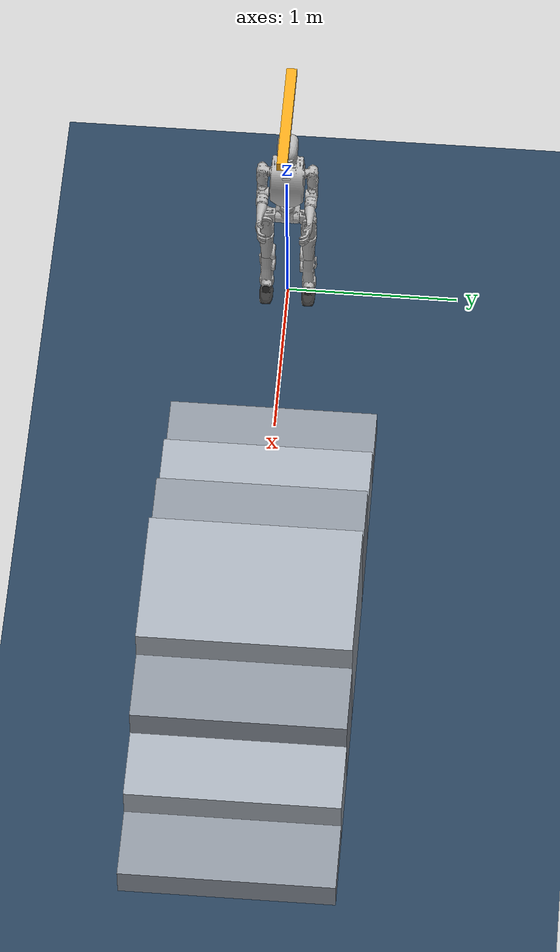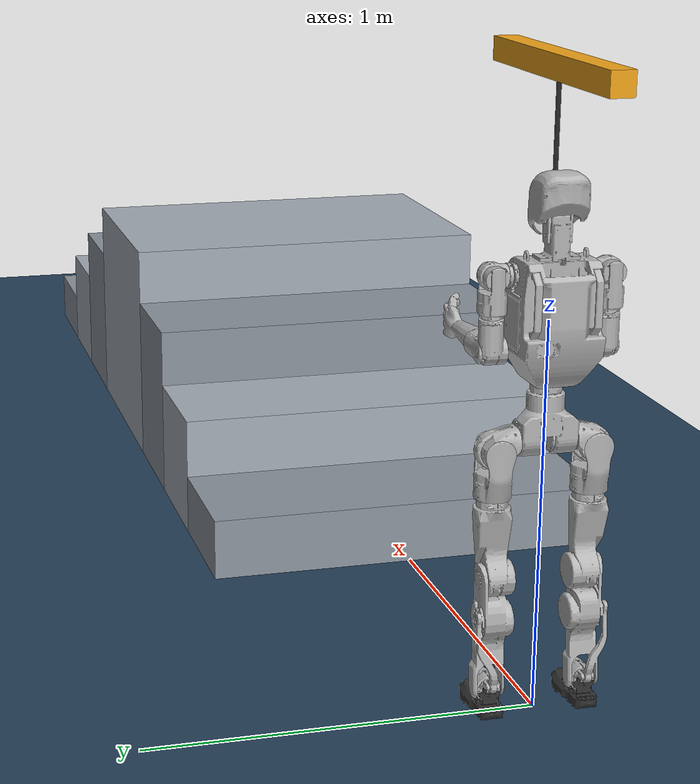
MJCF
<?xml version="1.0"?>
<mujoco model="AI Sapiens K1 gantry scene">
  <include file="k1.xml"/>

  <visual>
    <headlight diffuse="0.6 0.6 0.6" ambient="0.3 0.3 0.3" specular="0 0 0"/>
    <rgba haze="0.15 0.25 0.35 1"/>
    <global azimuth="-130" elevation="-20"/>
  </visual>

  <asset>
    <texture
      type="skybox"
      builtin="gradient"
      rgb1="0.3 0.5 0.7"
      rgb2="0 0 0"
      width="512"
      height="3072"/>
    <texture
      name="groundplane"
      type="2d"
      builtin="checker"
      rgb1="0.2 0.3 0.4"
      rgb2="0.1 0.2 0.3"
      mark="edge"
      markrgb="0.8 0.8 0.8"
      width="300"
      height="300"/>
    <material
      name="groundplane"
      texture="groundplane"
      texuniform="true"
      texrepeat="5 5"
      reflectance="0.2"/>
  </asset>

  <worldbody>
    <light pos="0 0 1.5" dir="0 0 -1" directional="true"/>
    <geom
      name="floor"
      type="plane"
      size="0 0 0.05"
      material="groundplane"/>
    <include file="stairs.xml"/>
    <body name="gantry" mocap="true" pos="0 0 1.60">
      <geom name="gantry_beam" type="box" size="0.35 0.03 0.03"
            contype="0" conaffinity="0" rgba="0.95 0.65 0.10 1"/>
      <geom name="gantry_cable" type="cylinder" size="0.006 0.28" pos="0 0 -0.31"
            contype="0" conaffinity="0" rgba="0.15 0.15 0.15 1"/>
    </body>
  </worldbody>

  <equality>
    <weld name="gantry_weld" body1="gantry" body2="torso_link"/>
  </equality>
</mujoco>

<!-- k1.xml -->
<mujoco model="k1">
  <compiler angle="radian" meshdir="../../meshes/k1_rev1" autolimits="true"/>
  <!-- Cyclo K1 Mimic: 4 physics steps per 0.02 s policy step. -->
  <option integrator="implicitfast" timestep="0.005" iterations="10" ls_iterations="20" ccd_iterations="50"/>
  <default>
    <joint damping="0" armature="0" frictionloss="0"/>
    <!-- Visual / Collision -->
    <default class="visual">
      <geom type="mesh" contype="0" conaffinity="0" group="2" density="0"/>
    </default>
    <default class="collision">
      <geom contype="1" conaffinity="1" condim="1" group="3" density="0" rgba="0.45 0.65 0.85 0.35"/>
      <!-- Match k1_rev1.py FULL_COLLISION; priority selects foot friction over the floor. -->
      <default class="foot_collision">
        <geom condim="3" priority="1" friction="0.6 0.005 0.0001"/>
      </default>
    </default>
    <!-- QC060-200-R020-RE motor: arms and ankle roll -->
    <default class="QC060-200-R020-RE">
      <joint armature="0.00564892"/>
      <motor ctrllimited="true" ctrlrange="-47.277 47.277" forcelimited="true" forcerange="-47.277 47.277"/>
    </default>
    <!-- QC080-240-R020-RE motor: hips, knees, ankle pitch, and waist yaw -->
    <default class="QC080-240-R020-RE">
      <joint armature="0.01936542"/>
      <motor ctrllimited="true" ctrlrange="-96.864 96.864" forcelimited="true" forcerange="-96.864 96.864"/>
    </default>
  </default>
  <asset>
    <material name="white" rgba="0.7 0.7 0.7 1"/>
    <material name="dark" rgba="0.2 0.2 0.2 1"/>
    <material name="blue" rgba="0 0 1 1"/>
    <mesh name="head_link" file="head_link.stl" scale="0.001 0.001 0.001"/>
    <mesh name="left_ankle_pitch_link" file="left_ankle_pitch_link.stl" scale="0.001 0.001 0.001"/>
    <mesh name="left_ankle_roll_link" file="left_ankle_roll_link.stl" scale="0.001 0.001 0.001"/>
    <mesh name="left_elbow_link" file="left_elbow_link.stl" scale="0.001 0.001 0.001"/>
    <mesh name="left_hip_pitch_link" file="left_hip_pitch_link.stl" scale="0.001 0.001 0.001"/>
    <mesh name="left_hip_roll_link" file="left_hip_roll_link.stl" scale="0.001 0.001 0.001"/>
    <mesh name="left_hip_yaw_link" file="left_hip_yaw_link.stl" scale="0.001 0.001 0.001"/>
    <mesh name="left_knee_link" file="left_knee_link.stl" scale="0.001 0.001 0.001"/>
    <mesh name="left_shoulder_pitch_link" file="left_shoulder_pitch_link.stl" scale="0.001 0.001 0.001"/>
    <mesh name="left_shoulder_roll_link" file="left_shoulder_roll_link.stl" scale="0.001 0.001 0.001"/>
    <mesh name="left_shoulder_yaw_link" file="left_shoulder_yaw_link.stl" scale="0.001 0.001 0.001"/>
    <mesh name="left_wrist_roll_rubber_hand" file="left_wrist_roll_rubber_hand.stl" scale="0.001 0.001 0.001"/>
    <mesh name="pelvis" file="pelvis.stl" scale="0.001 0.001 0.001"/>
    <mesh name="right_ankle_pitch_link" file="right_ankle_pitch_link.stl" scale="0.001 0.001 0.001"/>
    <mesh name="right_ankle_roll_link" file="right_ankle_roll_link.stl" scale="0.001 0.001 0.001"/>
    <mesh name="right_elbow_link" file="right_elbow_link.stl" scale="0.001 0.001 0.001"/>
    <mesh name="right_hip_pitch_link" file="right_hip_pitch_link.stl" scale="0.001 0.001 0.001"/>
    <mesh name="right_hip_roll_link" file="right_hip_roll_link.stl" scale="0.001 0.001 0.001"/>
    <mesh name="right_hip_yaw_link" file="right_hip_yaw_link.stl" scale="0.001 0.001 0.001"/>
    <mesh name="right_knee_link" file="right_knee_link.stl" scale="0.001 0.001 0.001"/>
    <mesh name="right_shoulder_pitch_link" file="right_shoulder_pitch_link.stl" scale="0.001 0.001 0.001"/>
    <mesh name="right_shoulder_roll_link" file="right_shoulder_roll_link.stl" scale="0.001 0.001 0.001"/>
    <mesh name="right_shoulder_yaw_link" file="right_shoulder_yaw_link.stl" scale="0.001 0.001 0.001"/>
    <mesh name="right_wrist_roll_rubber_hand" file="right_wrist_roll_rubber_hand.stl" scale="0.001 0.001 0.001"/>
    <mesh name="torso_link" file="torso_link.stl" scale="0.001 0.001 0.001"/>
  </asset>
  <worldbody>
    <body name="pelvis" pos="0 0 0.7955">
      <freejoint name="floating_base_joint"/>
      <inertial mass="3.612285000e+00"
        fullinertia="1.310875300e-02 9.176269400e-03 7.737728900e-03 -2.328763400e-07 5.514392300e-05 0.000000000e+00"
        pos="-2.925359500e-03 1.127629500e-06 -5.031528100e-02"/>
      <site name="imu" pos="0 0 0" quat="1 0 0 0" size="0.01" group="4"/>
      <geom class="visual" type="mesh" mesh="pelvis" material="white"/>
      <body name="left_hip_pitch_link" pos="0.0 0.040 -0.081">
        <inertial mass="1.145107600000e+00"
          fullinertia="1.421889812386e-03 1.033629795483e-03 1.088132517762e-03 2.042184810525e-05 -1.676488789760e-05 1.517172548758e-04"
          pos="-1.531630904980e-03 7.963346595672e-02 -2.592428596527e-02"/>
        <joint name="left_hip_pitch_joint" class="QC080-240-R020-RE" type="hinge" axis="0 1 0" range="-2.4435 2.4435" limited="true"
          actuatorfrclimited="true" actuatorfrcrange="-96.864 96.864"/>
        <geom class="visual" type="mesh" mesh="left_hip_pitch_link" material="white"/>
        <geom class="collision" pos="0 0.05 -0.02" euler="1.5708 0 0" type="cylinder" size="0.04 0.035"
          name="left_hip_pitch_link_collision_0"/>
        <body name="left_hip_roll_link" pos="-0.008 0.085 -0.030">
          <inertial mass="1.553528600000e+00"
            fullinertia="2.895593913609e-03 3.373453150000e-03 1.930057813609e-03 0.000000000000e+00 -7.419460800000e-05 -2.389544800000e-07"
            pos="1.451723700000e-02 0.000000000000e+00 -7.908224400000e-02"/>
          <joint name="left_hip_roll_joint" class="QC080-240-R020-RE" type="hinge" axis="1 0 0" range="-0.6109 2.5307"
            limited="true" actuatorfrclimited="true" actuatorfrcrange="-96.864 96.864"/>
          <geom class="visual" type="mesh" mesh="left_hip_roll_link" material="white"/>
          <body name="left_hip_yaw_link" pos="0.015 0.0 -0.0905">
            <inertial mass="1.835774100000e+00"
              fullinertia="1.056957363374e-02 1.098149862574e-02 1.600639866804e-03 -5.176745338720e-05 -4.528312668963e-04 -5.657788862029e-04"
              pos="-2.271799169407e-03 -5.348690484479e-03 -1.837910791103e-01"/>
            <joint name="left_hip_yaw_joint" class="QC080-240-R020-RE" type="hinge" axis="0 0 1" range="-3.1416 3.1416"
              limited="true" actuatorfrclimited="true" actuatorfrcrange="-96.864 96.864"/>
            <geom class="visual" type="mesh" mesh="left_hip_yaw_link" material="white"/>
            <geom class="collision" pos="0.0 0 -0.08" type="cylinder" size="0.045 0.065"
              name="left_hip_yaw_link_collision_0"/>
            <body name="left_knee_link" pos="-0.007 0.0 -0.2365">
              <inertial mass="2.527145400000e+00"
                fullinertia="1.262780659654e-02 1.311422450046e-02 2.980295546432e-03 1.945190841167e-04 -7.980998797765e-04 -3.173312502248e-04"
                pos="-2.270241351379e-03 4.250424132236e-03 -1.299305649983e-01"/>
              <joint name="left_knee_joint" class="QC080-240-R020-RE" type="hinge" axis="0 1 0" range="0 2.3562" limited="true"
                actuatorfrclimited="true" actuatorfrcrange="-96.864 96.864"/>
              <geom class="visual" type="mesh" mesh="left_knee_link" material="white"/>
              <geom class="collision" pos="0.0 0 -0.10" type="cylinder" size="0.04 0.09"
                name="left_knee_link_collision_0"/>
              <body name="left_ankle_pitch_link" pos="0.0 0.0 -0.294">
                <inertial mass="6.809980800000e-01"
                  fullinertia="3.739276718594e-04 4.252725400000e-04 4.458709718594e-04 0.000000000000e+00 4.977216400000e-05 0.000000000000e+00"
                  pos="4.741514100000e-03 0.000000000000e+00 2.430240700000e-03"/>
                <joint name="left_ankle_pitch_joint" class="QC080-240-R020-RE" type="hinge" axis="0 1 0" range="-0.7854 0.7854"
                  limited="true" actuatorfrclimited="true" actuatorfrcrange="-96.864 96.864"/>
                <geom class="visual" type="mesh" mesh="left_ankle_pitch_link" material="white"/>
                <body name="left_ankle_roll_link" pos="0 0 0.0">
                  <inertial mass="6.144995200000e-01"
                    fullinertia="4.106078400928e-04 1.507082100000e-03 1.591643400093e-03 0.000000000000e+00 4.426833600000e-05 0.000000000000e+00"
                    pos="3.360468400000e-02 0.000000000000e+00 -4.106129100000e-02"/>
                  <joint name="left_ankle_roll_joint" class="QC060-200-R020-RE" type="hinge" axis="1 0 0" range="-0.5236 0.5236"
                    limited="true" actuatorfrclimited="true" actuatorfrcrange="-47.277 47.277"/>
                  <geom class="visual" type="mesh" mesh="left_ankle_roll_link" material="dark"/>
                  <geom class="foot_collision" pos="-0.047 0.025 -0.06" type="sphere" size="0.005"
                    name="left_ankle_roll_link_collision_0"/>
                  <geom class="foot_collision" pos="-0.047 -0.025 -0.06" type="sphere" size="0.005"
                    name="left_ankle_roll_link_collision_1"/>
                  <geom class="foot_collision" pos="0.05 0.038 -0.06" type="sphere" size="0.005"
                    name="left_ankle_roll_link_collision_2"/>
                  <geom class="foot_collision" pos="0.05 -0.038 -0.06" type="sphere" size="0.005"
                    name="left_ankle_roll_link_collision_3"/>
                  <geom class="foot_collision" pos="0.112 0.027 -0.06" type="sphere" size="0.005"
                    name="left_ankle_roll_link_collision_4"/>
                  <geom class="foot_collision" pos="0.122 0.015 -0.05" type="sphere" size="0.005"
                    name="left_ankle_roll_link_collision_5"/>
                  <geom class="foot_collision" pos="0.125 0 -0.047" type="sphere" size="0.005"
                    name="left_ankle_roll_link_collision_6"/>
                  <geom class="foot_collision" pos="0.122 -0.015 -0.05" type="sphere" size="0.005"
                    name="left_ankle_roll_link_collision_7"/>
                  <geom class="foot_collision" pos="0.112 -0.027 -0.06" type="sphere" size="0.005"
                    name="left_ankle_roll_link_collision_8"/>
                </body>
              </body>
            </body>
          </body>
        </body>
      </body>
      <body name="right_hip_pitch_link" pos="0.0 -0.040 -0.081">
        <inertial mass="1.145107600000e+00"
          fullinertia="1.421889812386e-03 1.033629795483e-03 1.088132517762e-03 -2.042184810525e-05 -1.676488789760e-05 -1.517172548758e-04"
          pos="-1.531630904980e-03 -7.963346595672e-02 -2.592428596527e-02"/>
        <joint name="right_hip_pitch_joint" class="QC080-240-R020-RE" type="hinge" axis="0 1 0" range="-2.4435 2.4435"
          limited="true" actuatorfrclimited="true" actuatorfrcrange="-96.864 96.864"/>
        <geom class="visual" type="mesh" mesh="right_hip_pitch_link" material="white"/>
        <geom class="collision" pos="0 -0.05 -0.02" euler="1.5708 0 0" type="cylinder" size="0.04 0.035"
          name="right_hip_pitch_link_collision_0"/>
        <body name="right_hip_roll_link" pos="-0.008 -0.085 -0.030">
          <inertial mass="1.553528600000e+00"
            fullinertia="2.895593913609e-03 3.373453150000e-03 1.930057813609e-03 0.000000000000e+00 -7.419460800000e-05 2.389544800000e-07"
            pos="1.451723700000e-02 0.000000000000e+00 -7.908224400000e-02"/>
          <joint name="right_hip_roll_joint" class="QC080-240-R020-RE" type="hinge" axis="1 0 0" range="-2.5307 0.6109"
            limited="true" actuatorfrclimited="true" actuatorfrcrange="-96.864 96.864"/>
          <geom class="visual" type="mesh" mesh="right_hip_roll_link" material="white"/>
          <body name="right_hip_yaw_link" pos="0.015 0.0 -0.0905">
            <inertial mass="1.835774100000e+00"
              fullinertia="1.056957363374e-02 1.098149862574e-02 1.600639866804e-03 5.176745338720e-05 -4.528312668963e-04 5.657788862029e-04"
              pos="-2.271799169407e-03 5.348690484479e-03 -1.837910791103e-01"/>
            <joint name="right_hip_yaw_joint" class="QC080-240-R020-RE" type="hinge" axis="0 0 1" range="-3.1416 3.1416"
              limited="true" actuatorfrclimited="true" actuatorfrcrange="-96.864 96.864"/>
            <geom class="visual" type="mesh" mesh="right_hip_yaw_link" material="white"/>
            <geom class="collision" pos="0.0 0 -0.08" type="cylinder" size="0.045 0.065"
              name="right_hip_yaw_link_collision_0"/>
            <body name="right_knee_link" pos="-0.007 0.0 -0.2365">
              <inertial mass="2.527145400000e+00"
                fullinertia="1.262780659654e-02 1.311422450046e-02 2.980295546432e-03 -1.945190841167e-04 -7.980998797765e-04 3.173312502248e-04"
                pos="-2.270241351379e-03 -4.250424132236e-03 -1.299305649983e-01"/>
              <joint name="right_knee_joint" class="QC080-240-R020-RE" type="hinge" axis="0 1 0" range="0 2.3562" limited="true"
                actuatorfrclimited="true" actuatorfrcrange="-96.864 96.864"/>
              <geom class="visual" type="mesh" mesh="right_knee_link" material="white"/>
              <geom class="collision" pos="0.0 0 -0.10" type="cylinder" size="0.04 0.09"
                name="right_knee_link_collision_0"/>
              <body name="right_ankle_pitch_link" pos="0.0 0.0 -0.294">
                <inertial mass="6.809980800000e-01"
                  fullinertia="3.739276718594e-04 4.252725400000e-04 4.458709718594e-04 0.000000000000e+00 4.977216400000e-05 0.000000000000e+00"
                  pos="4.741514100000e-03 0.000000000000e+00 2.430240700000e-03"/>
                <joint name="right_ankle_pitch_joint" class="QC080-240-R020-RE" type="hinge" axis="0 1 0" range="-0.7854 0.7854"
                  limited="true" actuatorfrclimited="true" actuatorfrcrange="-96.864 96.864"/>
                <geom class="visual" type="mesh" mesh="right_ankle_pitch_link" material="white"/>
                <body name="right_ankle_roll_link" pos="0 0 0.0">
                  <inertial mass="6.144995200000e-01"
                    fullinertia="4.106078400928e-04 1.507082100000e-03 1.591643400093e-03 0.000000000000e+00 4.426833600000e-05 0.000000000000e+00"
                    pos="3.360468400000e-02 0.000000000000e+00 -4.106129100000e-02"/>
                  <joint name="right_ankle_roll_joint" class="QC060-200-R020-RE" type="hinge" axis="1 0 0" range="-0.5236 0.5236"
                    limited="true" actuatorfrclimited="true" actuatorfrcrange="-47.277 47.277"/>
                  <geom class="visual" type="mesh" mesh="right_ankle_roll_link" material="dark"/>
                  <geom class="foot_collision" pos="-0.047 0.025 -0.06" type="sphere" size="0.005"
                    name="right_ankle_roll_link_collision_0"/>
                  <geom class="foot_collision" pos="-0.047 -0.025 -0.06" type="sphere" size="0.005"
                    name="right_ankle_roll_link_collision_1"/>
                  <geom class="foot_collision" pos="0.05 0.038 -0.06" type="sphere" size="0.005"
                    name="right_ankle_roll_link_collision_2"/>
                  <geom class="foot_collision" pos="0.05 -0.038 -0.06" type="sphere" size="0.005"
                    name="right_ankle_roll_link_collision_3"/>
                  <geom class="foot_collision" pos="0.112 0.027 -0.06" type="sphere" size="0.005"
                    name="right_ankle_roll_link_collision_4"/>
                  <geom class="foot_collision" pos="0.122 0.015 -0.05" type="sphere" size="0.005"
                    name="right_ankle_roll_link_collision_5"/>
                  <geom class="foot_collision" pos="0.125 0 -0.047" type="sphere" size="0.005"
                    name="right_ankle_roll_link_collision_6"/>
                  <geom class="foot_collision" pos="0.122 -0.015 -0.05" type="sphere" size="0.005"
                    name="right_ankle_roll_link_collision_7"/>
                  <geom class="foot_collision" pos="0.112 -0.027 -0.06" type="sphere" size="0.005"
                    name="right_ankle_roll_link_collision_8"/>
                </body>
              </body>
            </body>
          </body>
        </body>
      </body>
      <body name="torso_link">
        <inertial mass="8.485159800e+00"
          fullinertia="8.705508700e-02 7.305000800e-02 4.271812600e-02 1.583453100e-04 5.178762500e-03 5.325749700e-04"
          pos="-9.348939900e-03 5.521418600e-04 2.188060700e-01"/>
        <joint name="waist_yaw_joint" class="QC080-240-R020-RE" type="hinge" axis="0 0 1" range="-6.2832 6.2832" limited="true"
          actuatorfrclimited="true" actuatorfrcrange="-96.864 96.864"/>
        <geom class="visual" type="mesh" mesh="torso_link" material="white"/>
        <geom class="collision" pos="-0.02 0 0.24" type="box" size="0.1 0.085 0.085" name="torso_link_collision_0"/>
        <body name="head_link" pos="-0.02725 0 0.361">
          <inertial mass="6.792353500e-01"
            fullinertia="2.471933800e-03 2.738339300e-03 1.531146400e-03 -8.394472500e-08 2.835210500e-05 -9.341772900e-08"
            pos="7.905180800e-03 7.391136900e-06 1.108984300e-01"/>
          <geom class="visual" type="mesh" mesh="head_link" material="white"/>
          <geom class="collision" type="mesh" mesh="head_link" name="head_link_collision_0"/>
        </body>
        <body name="left_shoulder_pitch_link" pos="0.0015 0.069 0.319">
          <inertial mass="6.074257400000e-01"
            fullinertia="3.529002080847e-04 3.006119076318e-04 3.483892704529e-04 6.220661200000e-06 -6.500570000000e-08 -8.238998319126e-09"
            pos="-2.860536300000e-03 7.356393650000e-02 3.947481570000e-06"/>
          <joint name="left_shoulder_pitch_joint" class="QC060-200-R020-RE" type="hinge" axis="0 1 0" range="-3.1416 3.1416"
            limited="true" actuatorfrclimited="true" actuatorfrcrange="-47.277 47.277"/>
          <geom class="visual" type="mesh" mesh="left_shoulder_pitch_link" material="white"/>
          <geom class="collision" pos="0 0.075 0.0" euler="0 1.5707963267948966 0" type="cylinder" size="0.032 0.025"
            name="left_shoulder_pitch_link_collision_0"/>
          <body name="left_shoulder_roll_link" pos="-0.005 0.077 0.0">
            <inertial mass="7.676193300000e-01"
              fullinertia="7.540640315074e-04 9.381096300000e-04 5.306054865074e-04 -3.848386467835e-14 -3.800846300000e-05 5.500000000099e-15"
              pos="-8.598869950000e-04 0.000000000000e+00 -6.266809700000e-02"/>
            <joint name="left_shoulder_roll_joint" class="QC060-200-R020-RE" type="hinge" axis="1 0 0" range="0 3.1416"
              limited="true" actuatorfrclimited="true" actuatorfrcrange="-47.277 47.277"/>
            <geom class="visual" type="mesh" mesh="left_shoulder_roll_link" material="white"/>
            <geom class="collision" pos="0.0 0.000 -0.13" type="cylinder" size="0.035 0.04"
              name="left_shoulder_roll_link_collision_0"/>
            <body name="left_shoulder_yaw_link" pos="0.0 0.0 -0.0687">
              <inertial mass="6.946265100000e-01"
                fullinertia="7.202233300000e-04 7.634050600000e-04 3.599643200000e-04 1.411072400000e-05 1.081796000000e-04 -3.396234100000e-05"
                pos="1.240965200000e-02 -4.015957800000e-03 -1.037212200000e-01"/>
              <joint name="left_shoulder_yaw_joint" class="QC060-200-R020-RE" type="hinge" axis="0 0 1" range="-3.1416 3.1416"
                limited="true" actuatorfrclimited="true" actuatorfrcrange="-47.277 47.277"/>
              <geom class="visual" type="mesh" mesh="left_shoulder_yaw_link" material="white"/>
              <body name="left_elbow_link" pos="0.016 -0.007 -0.1153">
                <inertial mass="6.689549900000e-01"
                  fullinertia="3.736555131490e-04 5.869930881490e-04 6.490868800000e-04 1.216866050000e-04 0.000000000000e+00 -3.369916297683e-12"
                  pos="6.552039900000e-02 4.121843650000e-03 0.000000000000e+00"/>
                <joint name="left_elbow_joint" class="QC060-200-R020-RE" type="hinge" axis="0 1 0" range="-0.7854 2.1817"
                  limited="true" actuatorfrclimited="true" actuatorfrcrange="-47.277 47.277"/>
                <geom class="visual" type="mesh" mesh="left_elbow_link" material="white"/>
                <body name="left_wrist_roll_rubber_hand" pos="0.0687 0.0 0.0">
                  <inertial mass="3.690000000000e-01"
                    fullinertia="2.034216700000e-04 2.413813900000e-03 2.355377400000e-03 1.009162200000e-04 4.214169350000e-05 -3.970702750000e-06"
                    pos="1.407654250000e-01 5.248606200000e-04 4.039338650000e-04"/>
                  <joint name="left_wrist_roll_joint" class="QC060-200-R020-RE" type="hinge" axis="1 0 0" range="-3.1416 3.1416"
                    limited="true" actuatorfrclimited="true" actuatorfrcrange="-47.277 47.277"/>
                  <geom class="visual" type="mesh" mesh="left_wrist_roll_rubber_hand" material="white"/>
                  <geom class="collision" type="mesh" mesh="left_wrist_roll_rubber_hand"
                    name="left_wrist_roll_rubber_hand_collision_0"/>
                </body>
              </body>
            </body>
          </body>
        </body>
        <body name="right_shoulder_pitch_link" pos="0.0015 -0.069 0.319">
          <inertial mass="6.074257400000e-01"
            fullinertia="3.529002080847e-04 3.006119076318e-04 3.483892704529e-04 -6.220661200000e-06 -6.500570000000e-08 8.238998319126e-09"
            pos="-2.860536300000e-03 -7.356393650000e-02 3.947481570000e-06"/>
          <joint name="right_shoulder_pitch_joint" class="QC060-200-R020-RE" type="hinge" axis="0 1 0" range="-3.1416 3.1416"
            limited="true" actuatorfrclimited="true" actuatorfrcrange="-47.277 47.277"/>
          <geom class="visual" type="mesh" mesh="right_shoulder_pitch_link" material="white"/>
          <geom class="collision" pos="0 -0.075 0.0" euler="0 1.5707963267948966 0" type="cylinder" size="0.032 0.025"
            name="right_shoulder_pitch_link_collision_0"/>
          <body name="right_shoulder_roll_link" pos="-0.005 -0.077 0.0">
            <inertial mass="7.676193300000e-01"
              fullinertia="7.540640315074e-04 9.381096300000e-04 5.306054865074e-04 3.848386467835e-14 -3.800846300000e-05 -5.500000000099e-15"
              pos="-8.598869950000e-04 0.000000000000e+00 -6.266809700000e-02"/>
            <joint name="right_shoulder_roll_joint" class="QC060-200-R020-RE" type="hinge" axis="1 0 0" range="-3.1416 0"
              limited="true" actuatorfrclimited="true" actuatorfrcrange="-47.277 47.277"/>
            <geom class="visual" type="mesh" mesh="right_shoulder_roll_link" material="white"/>
            <geom class="collision" pos="0.0 0.000 -0.13" type="cylinder" size="0.035 0.04"
              name="right_shoulder_roll_link_collision_0"/>
            <body name="right_shoulder_yaw_link" pos="0.0 0.0 -0.0687">
              <inertial mass="6.946265100000e-01"
                fullinertia="7.202233300000e-04 7.634050600000e-04 3.599643200000e-04 -1.411072400000e-05 1.081796000000e-04 3.396234100000e-05"
                pos="1.240965200000e-02 4.015957800000e-03 -1.037212200000e-01"/>
              <joint name="right_shoulder_yaw_joint" class="QC060-200-R020-RE" type="hinge" axis="0 0 1" range="-3.1416 3.1416"
                limited="true" actuatorfrclimited="true" actuatorfrcrange="-47.277 47.277"/>
              <geom class="visual" type="mesh" mesh="right_shoulder_yaw_link" material="white"/>
              <body name="right_elbow_link" pos="0.016 0.007 -0.1153">
                <inertial mass="6.689549900000e-01"
                  fullinertia="3.736555131490e-04 5.869930881490e-04 6.490868800000e-04 -1.216866050000e-04 0.000000000000e+00 3.369916297683e-12"
                  pos="6.552039900000e-02 -4.121843650000e-03 0.000000000000e+00"/>
                <joint name="right_elbow_joint" class="QC060-200-R020-RE" type="hinge" axis="0 1 0" range="-0.7854 2.1817"
                  limited="true" actuatorfrclimited="true" actuatorfrcrange="-47.277 47.277"/>
                <geom class="visual" type="mesh" mesh="right_elbow_link" material="white"/>
                <body name="right_wrist_roll_rubber_hand" pos="0.0687 0.0 0.0">
                  <inertial mass="3.690000000000e-01"
                    fullinertia="2.034216700000e-04 2.413813900000e-03 2.355377400000e-03 -1.009162200000e-04 4.214169350000e-05 3.970702750000e-06"
                    pos="1.407654250000e-01 -5.248606200000e-04 4.039338650000e-04"/>
                  <joint name="right_wrist_roll_joint" class="QC060-200-R020-RE" type="hinge" axis="1 0 0" range="-3.1416 3.1416"
                    limited="true" actuatorfrclimited="true" actuatorfrcrange="-47.277 47.277"/>
                  <geom class="visual" type="mesh" mesh="right_wrist_roll_rubber_hand" material="white"/>
                  <geom class="collision" type="mesh" mesh="right_wrist_roll_rubber_hand"
                    name="right_wrist_roll_rubber_hand_collision_0"/>
                </body>
              </body>
            </body>
          </body>
        </body>
      </body>
    </body>
  </worldbody>
  <actuator>
    <!-- Left leg -->
    <motor name="left_hip_pitch_joint_motor" joint="left_hip_pitch_joint" class="QC080-240-R020-RE"/>
    <motor name="left_hip_roll_joint_motor" joint="left_hip_roll_joint" class="QC080-240-R020-RE"/>
    <motor name="left_hip_yaw_joint_motor" joint="left_hip_yaw_joint" class="QC080-240-R020-RE"/>
    <motor name="left_knee_joint_motor" joint="left_knee_joint" class="QC080-240-R020-RE"/>
    <motor name="left_ankle_pitch_joint_motor" joint="left_ankle_pitch_joint" class="QC080-240-R020-RE"/>
    <motor name="left_ankle_roll_joint_motor" joint="left_ankle_roll_joint" class="QC060-200-R020-RE"/>
    <!-- Right leg -->
    <motor name="right_hip_pitch_joint_motor" joint="right_hip_pitch_joint" class="QC080-240-R020-RE"/>
    <motor name="right_hip_roll_joint_motor" joint="right_hip_roll_joint" class="QC080-240-R020-RE"/>
    <motor name="right_hip_yaw_joint_motor" joint="right_hip_yaw_joint" class="QC080-240-R020-RE"/>
    <motor name="right_knee_joint_motor" joint="right_knee_joint" class="QC080-240-R020-RE"/>
    <motor name="right_ankle_pitch_joint_motor" joint="right_ankle_pitch_joint" class="QC080-240-R020-RE"/>
    <motor name="right_ankle_roll_joint_motor" joint="right_ankle_roll_joint" class="QC060-200-R020-RE"/>
    <!-- Waist -->
    <motor name="waist_yaw_joint_motor" joint="waist_yaw_joint" class="QC080-240-R020-RE"/>
    <!-- Left arm -->
    <motor name="left_shoulder_pitch_joint_motor" joint="left_shoulder_pitch_joint" class="QC060-200-R020-RE"/>
    <motor name="left_shoulder_roll_joint_motor" joint="left_shoulder_roll_joint" class="QC060-200-R020-RE"/>
    <motor name="left_shoulder_yaw_joint_motor" joint="left_shoulder_yaw_joint" class="QC060-200-R020-RE"/>
    <motor name="left_elbow_joint_motor" joint="left_elbow_joint" class="QC060-200-R020-RE"/>
    <motor name="left_wrist_roll_joint_motor" joint="left_wrist_roll_joint" class="QC060-200-R020-RE"/>
    <!-- Right arm -->
    <motor name="right_shoulder_pitch_joint_motor" joint="right_shoulder_pitch_joint" class="QC060-200-R020-RE"/>
    <motor name="right_shoulder_roll_joint_motor" joint="right_shoulder_roll_joint" class="QC060-200-R020-RE"/>
    <motor name="right_shoulder_yaw_joint_motor" joint="right_shoulder_yaw_joint" class="QC060-200-R020-RE"/>
    <motor name="right_elbow_joint_motor" joint="right_elbow_joint" class="QC060-200-R020-RE"/>
    <motor name="right_wrist_roll_joint_motor" joint="right_wrist_roll_joint" class="QC060-200-R020-RE"/>
  </actuator>
  <sensor>
    <framequat name="imu_quat" objtype="site" objname="imu"/>
    <gyro name="imu_gyro" site="imu"/>
    <accelerometer name="imu_acc" site="imu"/>
  </sensor>
  <keyframe>
    <key name="home" qpos="0 0 0.7955 1 0 0 0 0 0 0 0 0 0 0 0 0 0 0 0 0 0 0 0 0 0 0 0 0 0 0"/>
  </keyframe>
</mujoco>

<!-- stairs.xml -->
<mujocoinclude>
  <geom name="stairs_step_1" type="box" pos="1.20 0 0.09" size="0.20 0.60 0.09"
        group="0" contype="1" conaffinity="1" margin="0" rgba="0.55 0.58 0.62 1"/>
  <geom name="stairs_step_2" type="box" pos="1.60 0 0.18" size="0.20 0.60 0.18"
        group="0" contype="1" conaffinity="1" margin="0" rgba="0.65 0.68 0.72 1"/>
  <geom name="stairs_step_3" type="box" pos="2.00 0 0.27" size="0.20 0.60 0.27"
        group="0" contype="1" conaffinity="1" margin="0" rgba="0.55 0.58 0.62 1"/>
  <geom name="stairs_step_4" type="box" pos="2.60 0 0.36" size="0.40 0.60 0.36"
        group="0" contype="1" conaffinity="1" margin="0" rgba="0.65 0.68 0.72 1"/>
  <!-- Descend along +X from the landing back to the floor at X=4.20 m. -->
  <geom name="stairs_step_5" type="box" pos="3.20 0 0.27" size="0.20 0.60 0.27"
        group="0" contype="1" conaffinity="1" margin="0" rgba="0.55 0.58 0.62 1"/>
  <geom name="stairs_step_6" type="box" pos="3.60 0 0.18" size="0.20 0.60 0.18"
        group="0" contype="1" conaffinity="1" margin="0" rgba="0.65 0.68 0.72 1"/>
  <geom name="stairs_step_7" type="box" pos="4.00 0 0.09" size="0.20 0.60 0.09"
        group="0" contype="1" conaffinity="1" margin="0" rgba="0.55 0.58 0.62 1"/>
</mujocoinclude>
